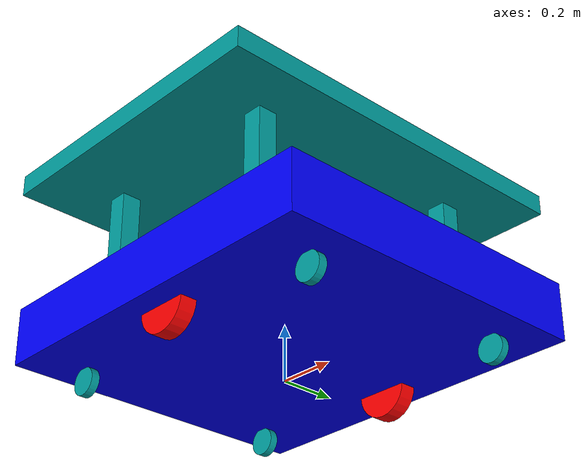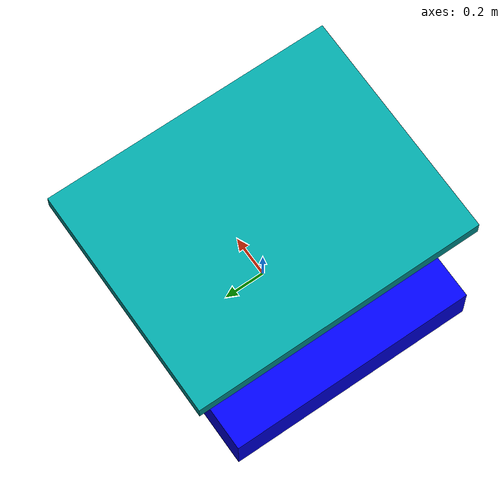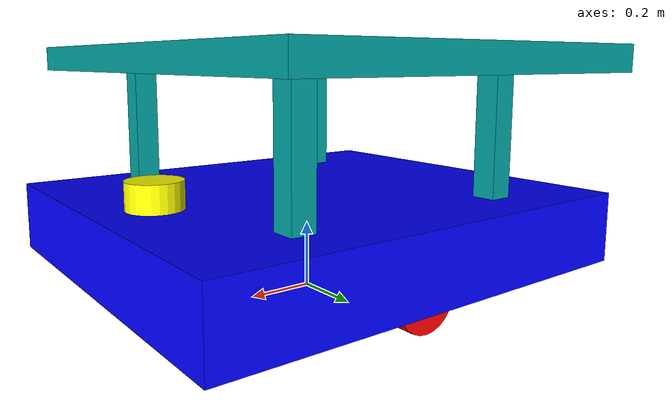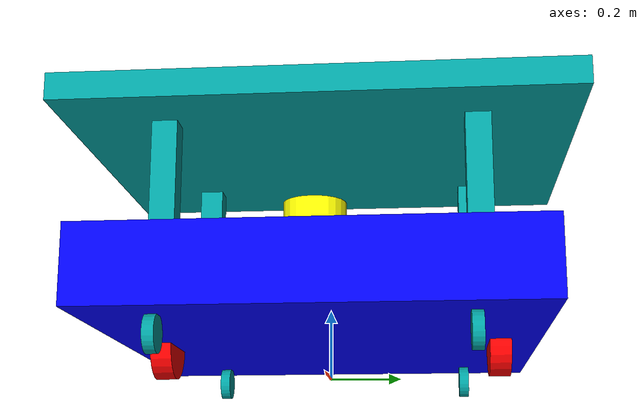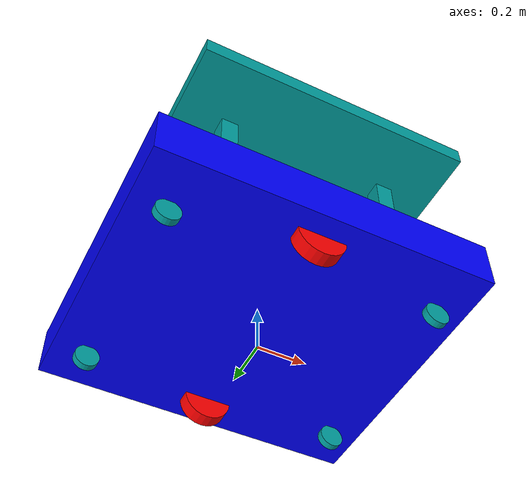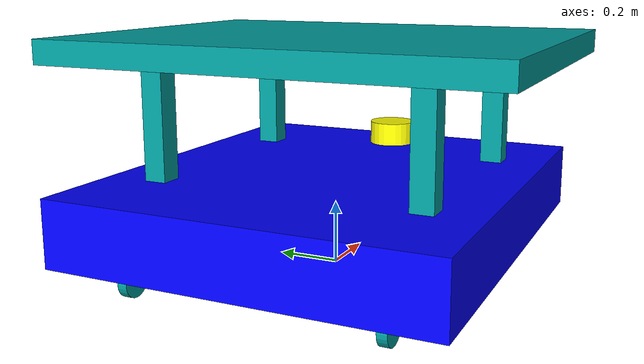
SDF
<?xml version="1.0"?>

<sdf version='1.9'>
  <model name='AmrRobot'>
    <plugin name="slotcar" filename="libslotcar.so">

      <nominal_drive_speed>1.5</nominal_drive_speed>
      <nominal_drive_speed_with_load>1.0</nominal_drive_speed_with_load>
      <nominal_drive_acceleration>0.25</nominal_drive_acceleration>
      <max_drive_acceleration>0.75</max_drive_acceleration>

      <nominal_turn_speed>0.6</nominal_turn_speed>
      <nominal_turn_acceleration>1.0</nominal_turn_acceleration>
      <max_turn_acceleration>2.0</max_turn_acceleration>

      <tire_radius>0.1</tire_radius>
      <base_width>0.965</base_width>

      <stop_distance>2.0</stop_distance>
      <stop_radius>0.5</stop_radius>

      <!-- Can the robot drive backwards -->
      <reversible>false</reversible>

      <!-- Battery params -->
      <nominal_voltage>12.0</nominal_voltage>
      <nominal_capacity>24.0</nominal_capacity>
      <charging_current>5.0</charging_current>

      <!-- Physical params -->
      <mass>415.206</mass>
      <inertia>162.198</inertia>
      <friction_coefficient>0.45</friction_coefficient>

      <!-- Power systems -->
      <nominal_power>20.0</nominal_power>

    </plugin>

    <link name='dummy_link'>
      <inertial>
        <pose>0.00024084430379137101 -2.139127131351967e-18 0.58502427594312556 0 0 0</pose>
        <mass>415.20600000000002</mass>
        <inertia>
          <ixx>162.1980172259444</ixx>
          <ixy>-2.1391271313519671e-19</ixy>
          <ixz>0.024802427594312549</ixz>
          <iyy>146.50755782351399</iyy>
          <iyz>-5.3843142689993904e-16</iyz>
          <izz>114.6476265282363</izz>
        </inertia>
      </inertial>
      <collision name='dummy_link_fixed_joint_lump__base_link_collision'>
        <pose>0 0 0.20399999999999999 0 0 0</pose>
        <geometry>
          <box>
            <size>1.472 1.374 0.20799999999999999</size>
          </box>
        </geometry>
      </collision>
      <collision name='dummy_link_fixed_joint_lump__left_back_caster_wheel_link_collision_1'>
        <pose>-0.54080000000000006 -0.39800000000000002 0.053999999999999992 1.5707963267948959 0 0</pose>
        <geometry>
          <cylinder>
            <length>0.029999999999999999</length>
            <radius>0.050000000000000003</radius>
          </cylinder>
        </geometry>
      </collision>
      <collision name='dummy_link_fixed_joint_lump__left_back_leg_link_collision_2'>
        <pose>-0.34749999999999998 -0.42349999999999999 0.44699999999999995 0 1.5707963267948966 0</pose>
        <geometry>
          <box>
            <size>0.43999999999999995 0.070000000000000007 0.070000000000000007</size>
          </box>
        </geometry>
      </collision>
      <collision name='dummy_link_fixed_joint_lump__left_front_caster_wheel_link_collision_3'>
        <pose>0.54080000000000006 -0.39800000000000002 0.053999999999999992 1.5707963267948959 0 0</pose>
        <geometry>
          <cylinder>
            <length>0.029999999999999999</length>
            <radius>0.050000000000000003</radius>
          </cylinder>
        </geometry>
      </collision>
      <collision name='dummy_link_fixed_joint_lump__left_front_leg_link_collision_4'>
        <pose>0.34749999999999998 -0.42349999999999999 0.44699999999999995 0 1.5707963267948966 0</pose>
        <geometry>
          <box>
            <size>0.43999999999999995 0.070000000000000007 0.070000000000000007</size>
          </box>
        </geometry>
      </collision>
      <collision name='dummy_link_fixed_joint_lump__right_back_caster_wheel_link_collision_5'>
        <pose>-0.54080000000000006 0.39800000000000002 0.053999999999999992 1.5707963267948959 0 0</pose>
        <geometry>
          <cylinder>
            <length>0.029999999999999999</length>
            <radius>0.050000000000000003</radius>
          </cylinder>
        </geometry>
      </collision>
      <collision name='dummy_link_fixed_joint_lump__right_back_leg_link_collision_6'>
        <pose>-0.34749999999999998 0.42349999999999999 0.44699999999999995 0 1.5707963267948966 0</pose>
        <geometry>
          <box>
            <size>0.43999999999999995 0.070000000000000007 0.070000000000000007</size>
          </box>
        </geometry>
      </collision>
      <collision name='dummy_link_fixed_joint_lump__right_front_caster_wheel_link_collision_7'>
        <pose>0.54080000000000006 0.39800000000000002 0.053999999999999992 1.5707963267948959 0 0</pose>
        <geometry>
          <cylinder>
            <length>0.029999999999999999</length>
            <radius>0.050000000000000003</radius>
          </cylinder>
        </geometry>
      </collision>
      <collision name='dummy_link_fixed_joint_lump__right_front_leg_link_collision_8'>
        <pose>0.34749999999999998 0.42349999999999999 0.44699999999999995 0 1.5707963267948966 0</pose>
        <geometry>
          <box>
            <size>0.43999999999999995 0.070000000000000007 0.070000000000000007</size>
          </box>
        </geometry>
      </collision>
      <collision name='dummy_link_fixed_joint_lump__scanner_laser_collision_9'>
        <pose>0.5 0 0.33700000000000002 0 0 0</pose>
        <geometry>
          <cylinder>
            <length>0.10000000000000001</length>
            <radius>0.080000000000000002</radius>
          </cylinder>
        </geometry>
      </collision>
      <collision name='dummy_link_fixed_joint_lump__top_link_collision_10'>
        <pose>0 0 0.7035 0 0 0</pose>
        <geometry>
          <box>
            <size>1.21 1.4930000000000001 0.074999999999999997</size>
          </box>
        </geometry>
      </collision>

      <visual name='dummy_link_fixed_joint_lump__base_link_visual'>
        <pose>0 0 0.20399999999999999 0 0 0</pose>
        <geometry>
          <box>
            <size>1.3520000000000001 1.194 0.20799999999999999</size>
          </box>
        </geometry>
        <material>
          <diffuse>0 0 1 1</diffuse>
          <ambient>0 0 1 1</ambient>
        </material>
      </visual>
      <visual name='dummy_link_fixed_joint_lump__left_back_caster_wheel_link_visual_1'>
        <pose>-0.54080000000000006 -0.39800000000000002 0.053999999999999992 1.5707963267948959 0 0</pose>
        <geometry>
          <cylinder>
            <length>0.029999999999999999</length>
            <radius>0.050000000000000003</radius>
          </cylinder>
        </geometry>
        <material>
          <diffuse>0 0.625 0.625 1</diffuse>
          <ambient>0 0.625 0.625 1</ambient>
        </material>
      </visual>
      <visual name='dummy_link_fixed_joint_lump__left_back_leg_link_visual_2'>
        <pose>-0.34749999999999998 -0.42349999999999999 0.44699999999999995 0 1.5707963267948966 0</pose>
        <geometry>
          <box>
            <size>0.43999999999999995 0.070000000000000007 0.070000000000000007</size>
          </box>
        </geometry>
        <material>
          <diffuse>0 0.625 0.625 1</diffuse>
          <ambient>0 0.625 0.625 1</ambient>
        </material>
      </visual>
      <visual name='dummy_link_fixed_joint_lump__left_front_caster_wheel_link_visual_3'>
        <pose>0.54080000000000006 -0.39800000000000002 0.053999999999999992 1.5707963267948959 0 0</pose>
        <geometry>
          <cylinder>
            <length>0.029999999999999999</length>
            <radius>0.050000000000000003</radius>
          </cylinder>
        </geometry>
        <material>
          <diffuse>0 0.625 0.625 1</diffuse>
          <ambient>0 0.625 0.625 1</ambient>
        </material>
      </visual>
      <visual name='dummy_link_fixed_joint_lump__left_front_leg_link_visual_4'>
        <pose>0.34749999999999998 -0.42349999999999999 0.44699999999999995 0 1.5707963267948966 0</pose>
        <geometry>
          <box>
            <size>0.43999999999999995 0.070000000000000007 0.070000000000000007</size>
          </box>
        </geometry>
        <material>
          <diffuse>0 0.625 0.625 1</diffuse>
          <ambient>0 0.625 0.625 1</ambient>
        </material>
      </visual>
      <visual name='dummy_link_fixed_joint_lump__right_back_caster_wheel_link_visual_5'>
        <pose>-0.54080000000000006 0.39800000000000002 0.053999999999999992 1.5707963267948959 0 0</pose>
        <geometry>
          <cylinder>
            <length>0.029999999999999999</length>
            <radius>0.050000000000000003</radius>
          </cylinder>
        </geometry>
        <material>
          <diffuse>0 0.625 0.625 1</diffuse>
          <ambient>0 0.625 0.625 1</ambient>
        </material>
      </visual>
      <visual name='dummy_link_fixed_joint_lump__right_back_leg_link_visual_6'>
        <pose>-0.34749999999999998 0.42349999999999999 0.44699999999999995 0 1.5707963267948966 0</pose>
        <geometry>
          <box>
            <size>0.43999999999999995 0.070000000000000007 0.070000000000000007</size>
          </box>
        </geometry>
        <material>
          <diffuse>0 0.625 0.625 1</diffuse>
          <ambient>0 0.625 0.625 1</ambient>
        </material>
      </visual>
      <visual name='dummy_link_fixed_joint_lump__right_front_caster_wheel_link_visual_7'>
        <pose>0.54080000000000006 0.39800000000000002 0.053999999999999992 1.5707963267948959 0 0</pose>
        <geometry>
          <cylinder>
            <length>0.029999999999999999</length>
            <radius>0.050000000000000003</radius>
          </cylinder>
        </geometry>
        <material>
          <diffuse>0 0.625 0.625 1</diffuse>
          <ambient>0 0.625 0.625 1</ambient>
        </material>
      </visual>
      <visual name='dummy_link_fixed_joint_lump__right_front_leg_link_visual_8'>
        <pose>0.34749999999999998 0.42349999999999999 0.44699999999999995 0 1.5707963267948966 0</pose>
        <geometry>
          <box>
            <size>0.43999999999999995 0.070000000000000007 0.070000000000000007</size>
          </box>
        </geometry>
        <material>
          <diffuse>0 0.625 0.625 1</diffuse>
          <ambient>0 0.625 0.625 1</ambient>
        </material>
      </visual>
      <visual name='dummy_link_fixed_joint_lump__scanner_laser_visual_9'>
        <pose>0.5 0 0.33700000000000002 0 0 0</pose>
        <geometry>
          <cylinder>
            <length>0.10000000000000001</length>
            <radius>0.080000000000000002</radius>
          </cylinder>
        </geometry>
        <material>
          <diffuse>1 1 0 1</diffuse>
          <ambient>1 1 0 1</ambient>
        </material>
      </visual>
      <visual name='dummy_link_fixed_joint_lump__top_link_visual_10'>
        <pose>0 0 0.7035 0 0 0</pose>
        <geometry>
          <box>
            <size>1.1200000000000001 1.403 0.074999999999999997</size>
          </box>
        </geometry>
        <material>
          <diffuse>0 0.625 0.625 1</diffuse>
          <ambient>0 0.625 0.625 1</ambient>
        </material>
      </visual>
    </link>
    <joint name='left_wheel_joint' type='revolute'>
      <pose relative_to='dummy_link'>0 0.48249999999999998 0.104 0 0 0</pose>
      <parent>dummy_link</parent>
      <child>left_wheel</child>
      <axis>
        <xyz>0 1 0</xyz>
        <limit>
          <effort>100</effort>
          <velocity>1</velocity>
          <lower>-inf</lower>
          <upper>inf</upper>
        </limit>
        <dynamics>
          <damping>0.20000000000000001</damping>
          <friction>0</friction>
          <spring_reference>0</spring_reference>
          <spring_stiffness>0</spring_stiffness>
        </dynamics>
      </axis>
    </joint>
    <link name='left_wheel'>
      <pose relative_to='left_wheel_joint'>0 0 0 0 0 0</pose>
      <inertial>
        <pose>0 0 0 1.5707963267948959 0 0</pose>
        <mass>2.6819999999999999</mass>
        <inertia>
          <ixx>0.0071890047162000001</ixx>
          <ixy>0</ixy>
          <ixz>0</ixz>
          <iyy>0.0071890047162000001</iyy>
          <iyz>0</iyz>
          <izz>0.0127688094324</izz>
        </inertia>
      </inertial>
      <collision name='left_wheel_collision'>
        <pose>0 0 0 1.5707963267948959 0 0</pose>
        <geometry>
          <cylinder>
            <length>0.059999999999999998</length>
            <radius>0.09758</radius>
          </cylinder>
        </geometry>
      </collision>
      <visual name='left_wheel_visual'>
        <pose>0 0 0 1.5707963267948959 0 0</pose>
        <geometry>
          <cylinder>
            <length>0.059999999999999998</length>
            <radius>0.09758</radius>
          </cylinder>
        </geometry>
        <material>
          <diffuse>1 0 0 1</diffuse>
          <ambient>1 0 0 1</ambient>
        </material>
      </visual>
    </link>
    <joint name='right_wheel_joint' type='revolute'>
      <pose relative_to='dummy_link'>0 -0.48249999999999998 0.104 0 0 0</pose>
      <parent>dummy_link</parent>
      <child>right_wheel</child>
      <axis>
        <xyz>0 1 0</xyz>
        <limit>
          <effort>100</effort>
          <velocity>1</velocity>
          <lower>-inf</lower>
          <upper>inf</upper>
        </limit>
        <dynamics>
          <damping>0.20000000000000001</damping>
          <friction>0</friction>
          <spring_reference>0</spring_reference>
          <spring_stiffness>0</spring_stiffness>
        </dynamics>
      </axis>
    </joint>
    <link name='right_wheel'>
      <pose relative_to='right_wheel_joint'>0 0 0 0 0 0</pose>
      <inertial>
        <pose>0 0 0 1.5707963267948959 0 0</pose>
        <mass>2.6819999999999999</mass>
        <inertia>
          <ixx>0.0071890047162000001</ixx>
          <ixy>0</ixy>
          <ixz>0</ixz>
          <iyy>0.0071890047162000001</iyy>
          <iyz>0</iyz>
          <izz>0.0127688094324</izz>
        </inertia>
      </inertial>
      <collision name='right_wheel_collision'>
        <pose>0 0 0 1.5707963267948959 0 0</pose>
        <geometry>
          <cylinder>
            <length>0.059999999999999998</length>
            <radius>0.09758</radius>
          </cylinder>
        </geometry>
      </collision>
      <visual name='right_wheel_visual'>
        <pose>0 0 0 1.5707963267948959 0 0</pose>
        <geometry>
          <cylinder>
            <length>0.059999999999999998</length>
            <radius>0.09758</radius>
          </cylinder>
        </geometry>
        <material>
          <diffuse>1 0 0 1</diffuse>
          <ambient>1 0 0 1</ambient>
        </material>
      </visual>

    </link>
    <frame name='LB_caster_wheel_joint' attached_to='base_link'>
      <pose>-0.54080000000000006 -0.39800000000000002 -0.050000000000000003 0 0 0</pose>
    </frame>
    <frame name='left_back_caster_wheel_link' attached_to='LB_caster_wheel_joint'>
      <pose>0 0 0 0 0 0</pose>
    </frame>
    <frame name='LB_leg_joint' attached_to='base_link'>
      <pose>-0.34749999999999998 -0.42349999999999999 0.068 0 0 0</pose>
    </frame>
    <frame name='left_back_leg_link' attached_to='LB_leg_joint'>
      <pose>0 0 0 0 0 0</pose>
    </frame>
    <frame name='LF_caster_wheel_joint' attached_to='base_link'>
      <pose>0.54080000000000006 -0.39800000000000002 -0.050000000000000003 0 0 0</pose>
    </frame>
    <frame name='left_front_caster_wheel_link' attached_to='LF_caster_wheel_joint'>
      <pose>0 0 0 0 0 0</pose>
    </frame>
    <frame name='LF_leg_joint' attached_to='base_link'>
      <pose>0.34749999999999998 -0.42349999999999999 0.068 0 0 0</pose>
    </frame>
    <frame name='left_front_leg_link' attached_to='LF_leg_joint'>
      <pose>0 0 0 0 0 0</pose>
    </frame>
    <frame name='RB_caster_wheel_joint' attached_to='base_link'>
      <pose>-0.54080000000000006 0.39800000000000002 -0.050000000000000003 0 0 0</pose>
    </frame>
    <frame name='right_back_caster_wheel_link' attached_to='RB_caster_wheel_joint'>
      <pose>0 0 0 0 0 0</pose>
    </frame>
    <frame name='RB_leg_joint' attached_to='base_link'>
      <pose>-0.34749999999999998 0.42349999999999999 0.068 0 0 0</pose>
    </frame>
    <frame name='right_back_leg_link' attached_to='RB_leg_joint'>
      <pose>0 0 0 0 0 0</pose>
    </frame>
    <frame name='RF_caster_wheel_joint' attached_to='base_link'>
      <pose>0.54080000000000006 0.39800000000000002 -0.050000000000000003 0 0 0</pose>
    </frame>
    <frame name='right_front_caster_wheel_link' attached_to='RF_caster_wheel_joint'>
      <pose>0 0 0 0 0 0</pose>
    </frame>
    <frame name='RF_leg_joint' attached_to='base_link'>
      <pose>0.34749999999999998 0.42349999999999999 0.068 0 0 0</pose>
    </frame>
    <frame name='right_front_leg_link' attached_to='RF_leg_joint'>
      <pose>0 0 0 0 0 0</pose>
    </frame>
    <frame name='base_imu_joint' attached_to='base_link'>
      <pose>0.36659999999999998 0 0.23300000000000001 0 0 3.1415926535897931</pose>
    </frame>
    <frame name='imu_link' attached_to='base_imu_joint'>
      <pose>0 0 0 0 0 0</pose>
    </frame>
    <frame name='scanner_mount_to_scanner' attached_to='scanner_mount_link'>
      <pose>0 0 0 0 0 0</pose>
    </frame>
    <frame name='scanner_laser' attached_to='scanner_mount_to_scanner'>
      <pose>0 0 0 0 0 0</pose>
    </frame>
    <frame name='base_scanner_mount_joint' attached_to='base_link'>
      <pose>0.5 0 0.23300000000000001 0 0 0</pose>
    </frame>
    <frame name='scanner_mount_link' attached_to='base_scanner_mount_joint'>
      <pose>0 0 0 0 0 0</pose>
    </frame>
    <frame name='top_joint' attached_to='dummy_link'>
      <pose>0 0 0.5995 0 0 0</pose>
    </frame>
    <frame name='top_link' attached_to='top_joint'>
      <pose>0 0 0 0 0 0</pose>
    </frame>
    <frame name='dummy_link_base_joint' attached_to='dummy_link'>
      <pose>0 0 0.104 0 0 0</pose>
    </frame>
    <frame name='base_link' attached_to='dummy_link_base_joint'>
      <pose>0 0 0 0 0 0</pose>
    </frame>

  </model>
</sdf>
